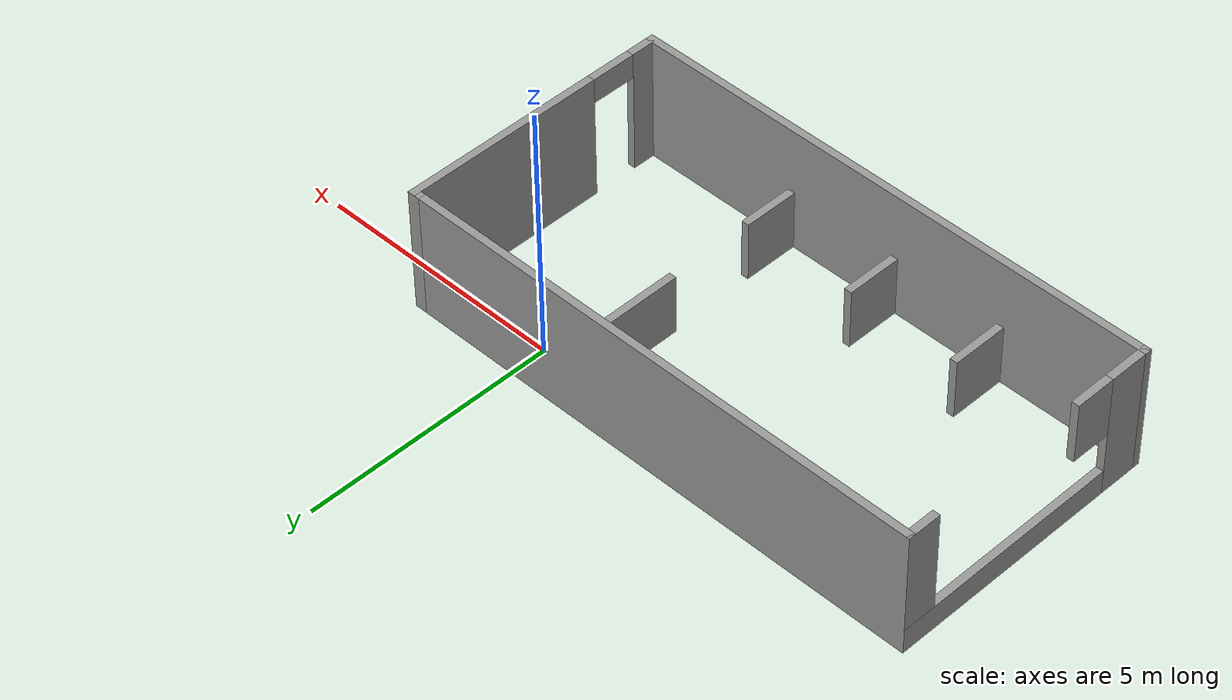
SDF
<?xml version='1.0'?>
<sdf version='1.6'>
  <model name='embd'>
    <pose frame=''>-3.11 -2.01767 0 0 -0 0</pose>
    <link name='Wall_0'>
      <collision name='Wall_0_Collision'>
        <geometry>
          <box>
            <size>10.75 0.15 2.5</size>
          </box>
        </geometry>
        <pose frame=''>0 0 1.25 0 -0 0</pose>
      </collision>
      <visual name='Wall_0_Visual'>
        <pose frame=''>0 0 1.25 0 -0 0</pose>
        <geometry>
          <box>
            <size>10.75 0.15 2.5</size>
          </box>
        </geometry>
        <material>
          <script>
            <uri>file://media/materials/scripts/gazebo.material</uri>
            <name>Gazebo/Grey</name>
          </script>
          <ambient>1 1 1 1</ambient>
        </material>
        <meta>
          <layer>0</layer>
        </meta>
      </visual>
      <pose frame=''>0 -2.67233 0 0 -0 3.14159</pose>
    </link>
    <link name='Wall_10'>
      <collision name='Wall_10_Collision'>
        <geometry>
          <box>
            <size>2.5 0.15 1.2</size>
          </box>
        </geometry>
        <pose frame=''>0 0 0.6 0 -0 0</pose>
      </collision>
      <visual name='Wall_10_Visual'>
        <pose frame=''>0 0 0.6 0 -0 0</pose>
        <geometry>
          <box>
            <size>2.5 0.15 1.2</size>
          </box>
        </geometry>
        <material>
          <script>
            <uri>file://media/materials/scripts/gazebo.material</uri>
            <name>Gazebo/Grey</name>
          </script>
          <ambient>1 1 1 1</ambient>
        </material>
        <meta>
          <layer>0</layer>
        </meta>
      </visual>
      <pose frame=''>1.97567 1.45267 0 0 0 -1.5708</pose>
    </link>
    <link name='Wall_12'>
      <collision name='Wall_12_Collision'>
        <geometry>
          <box>
            <size>1.25 0.15 1.2</size>
          </box>
        </geometry>
        <pose frame=''>0 0 0.6 0 -0 0</pose>
      </collision>
      <visual name='Wall_12_Visual'>
        <pose frame=''>0 0 0.6 0 -0 0</pose>
        <geometry>
          <box>
            <size>1.25 0.15 1.2</size>
          </box>
        </geometry>
        <material>
          <script>
            <uri>file://media/materials/scripts/gazebo.material</uri>
            <name>Gazebo/Grey</name>
          </script>
          <ambient>1 1 1 1</ambient>
        </material>
        <meta>
          <layer>0</layer>
        </meta>
      </visual>
      <pose frame=''>2.00567 -2.12767 0 0 -0 1.5708</pose>
    </link>
    <link name='Wall_14'>
      <collision name='Wall_14_Collision'>
        <geometry>
          <box>
            <size>1.25 0.15 1.2</size>
          </box>
        </geometry>
        <pose frame=''>0 0 0.6 0 -0 0</pose>
      </collision>
      <visual name='Wall_14_Visual'>
        <pose frame=''>0 0 0.6 0 -0 0</pose>
        <geometry>
          <box>
            <size>1.25 0.15 1.2</size>
          </box>
        </geometry>
        <material>
          <script>
            <uri>file://media/materials/scripts/gazebo.material</uri>
            <name>Gazebo/Grey</name>
          </script>
          <ambient>1 1 1 1</ambient>
        </material>
        <meta>
          <layer>0</layer>
        </meta>
      </visual>
      <pose frame=''>-0.279 -2.12333 0 0 0 -1.5708</pose>
    </link>
    <link name='Wall_16'>
      <collision name='Wall_16_Collision'>
        <geometry>
          <box>
            <size>1.25 0.15 1.2</size>
          </box>
        </geometry>
        <pose frame=''>0 0 0.6 0 -0 0</pose>
      </collision>
      <visual name='Wall_16_Visual'>
        <pose frame=''>0 0 0.6 0 -0 0</pose>
        <geometry>
          <box>
            <size>1.25 0.15 1.2</size>
          </box>
        </geometry>
        <material>
          <script>
            <uri>file://media/materials/scripts/gazebo.material</uri>
            <name>Gazebo/Grey</name>
          </script>
          <ambient>1 1 1 1</ambient>
        </material>
        <meta>
          <layer>0</layer>
        </meta>
      </visual>
      <pose frame=''>-2.548 -2.10833 0 0 0 -1.5708</pose>
    </link>
    <link name='Wall_2'>
      <pose frame=''>-5.3 0.002666 0 0 -0 1.5708</pose>
      <visual name='Wall_2_Visual_0'>
        <pose frame=''>-2.294 0 1.25 0 -0 0</pose>
        <geometry>
          <box>
            <size>0.911993 0.15 2.5</size>
          </box>
        </geometry>
        <material>
          <script>
            <uri>file://media/materials/scripts/gazebo.material</uri>
            <name>Gazebo/Grey</name>
          </script>
          <ambient>1 1 1 1</ambient>
        </material>
        <meta>
          <layer>0</layer>
        </meta>
      </visual>
      <collision name='Wall_2_Collision_0'>
        <geometry>
          <box>
            <size>0.911993 0.15 2.5</size>
          </box>
        </geometry>
        <pose frame=''>-2.294 0 1.25 0 -0 0</pose>
      </collision>
      <visual name='Wall_2_Visual_1'>
        <pose frame=''>0.455997 0 0.25 0 -0 0</pose>
        <geometry>
          <box>
            <size>4.58801 0.15 0.5</size>
          </box>
        </geometry>
        <material>
          <script>
            <uri>file://media/materials/scripts/gazebo.material</uri>
            <name>Gazebo/Grey</name>
          </script>
          <ambient>1 1 1 1</ambient>
        </material>
        <meta>
          <layer>0</layer>
        </meta>
      </visual>
      <collision name='Wall_2_Collision_1'>
        <geometry>
          <box>
            <size>4.58801 0.15 0.5</size>
          </box>
        </geometry>
        <pose frame=''>0.455997 0 0.25 0 -0 0</pose>
      </collision>
      <visual name='Wall_2_Visual_2'>
        <pose frame=''>2.41233 0 1.5 0 -0 0</pose>
        <geometry>
          <box>
            <size>0.67534 0.15 2</size>
          </box>
        </geometry>
        <material>
          <script>
            <uri>file://media/materials/scripts/gazebo.material</uri>
            <name>Gazebo/Grey</name>
          </script>
          <ambient>1 1 1 1</ambient>
        </material>
        <meta>
          <layer>0</layer>
        </meta>
      </visual>
      <collision name='Wall_2_Collision_2'>
        <geometry>
          <box>
            <size>0.67534 0.15 2</size>
          </box>
        </geometry>
        <pose frame=''>2.41233 0 1.5 0 -0 0</pose>
      </collision>
      <visual name='Wall_2_Visual_3'>
        <pose frame=''>-1.43934 0 1.9 0 -0 0</pose>
        <geometry>
          <box>
            <size>0.797333 0.15 1.2</size>
          </box>
        </geometry>
        <material>
          <script>
            <uri>file://media/materials/scripts/gazebo.material</uri>
            <name>Gazebo/Grey</name>
          </script>
          <ambient>1 1 1 1</ambient>
        </material>
        <meta>
          <layer>0</layer>
        </meta>
      </visual>
      <collision name='Wall_2_Collision_3'>
        <geometry>
          <box>
            <size>0.797333 0.15 1.2</size>
          </box>
        </geometry>
        <pose frame=''>-1.43934 0 1.9 0 -0 0</pose>
      </collision>
    </link>
    <link name='Wall_3'>
      <collision name='Wall_3_Collision'>
        <geometry>
          <box>
            <size>10.5 0.15 2.5</size>
          </box>
        </geometry>
        <pose frame=''>0 0 1.25 0 -0 0</pose>
      </collision>
      <visual name='Wall_3_Visual'>
        <pose frame=''>0 0 1.25 0 -0 0</pose>
        <geometry>
          <box>
            <size>10.5 0.15 2.5</size>
          </box>
        </geometry>
        <material>
          <script>
            <uri>file://media/materials/scripts/gazebo.material</uri>
            <name>Gazebo/Grey</name>
          </script>
          <ambient>1 1 1 1</ambient>
        </material>
        <meta>
          <layer>0</layer>
        </meta>
      </visual>
      <pose frame=''>-0.125 2.67767 0 0 -0 0</pose>
    </link>
    <link name='Wall_5'>
      <pose frame=''>5.3 0.002666 0 0 -0 1.5708</pose>
      <visual name='Wall_5_Visual_0'>
        <pose frame=''>-2.44934 0 1.25 0 -0 0</pose>
        <geometry>
          <box>
            <size>0.601327 0.15 2.5</size>
          </box>
        </geometry>
        <material>
          <script>
            <uri>file://media/materials/scripts/gazebo.material</uri>
            <name>Gazebo/Grey</name>
          </script>
          <ambient>1 1 1 1</ambient>
        </material>
        <meta>
          <layer>0</layer>
        </meta>
      </visual>
      <collision name='Wall_5_Collision_0'>
        <geometry>
          <box>
            <size>0.601327 0.15 2.5</size>
          </box>
        </geometry>
        <pose frame=''>-2.44934 0 1.25 0 -0 0</pose>
      </collision>
      <visual name='Wall_5_Visual_1'>
        <pose frame=''>0.750663 0 1.25 0 -0 0</pose>
        <geometry>
          <box>
            <size>3.99867 0.15 2.5</size>
          </box>
        </geometry>
        <material>
          <script>
            <uri>file://media/materials/scripts/gazebo.material</uri>
            <name>Gazebo/Grey</name>
          </script>
          <ambient>1 1 1 1</ambient>
        </material>
        <meta>
          <layer>0</layer>
        </meta>
      </visual>
      <collision name='Wall_5_Collision_1'>
        <geometry>
          <box>
            <size>3.99867 0.15 2.5</size>
          </box>
        </geometry>
        <pose frame=''>0.750663 0 1.25 0 -0 0</pose>
      </collision>
      <visual name='Wall_5_Visual_2'>
        <pose frame=''>-1.69867 0 2.25 0 -0 0</pose>
        <geometry>
          <box>
            <size>0.9 0.15 0.5</size>
          </box>
        </geometry>
        <material>
          <script>
            <uri>file://media/materials/scripts/gazebo.material</uri>
            <name>Gazebo/Grey</name>
          </script>
          <ambient>1 1 1 1</ambient>
        </material>
        <meta>
          <layer>0</layer>
        </meta>
      </visual>
      <collision name='Wall_5_Collision_2'>
        <geometry>
          <box>
            <size>0.9 0.15 0.5</size>
          </box>
        </geometry>
        <pose frame=''>-1.69867 0 2.25 0 -0 0</pose>
      </collision>
    </link>
    <link name='Wall_6'>
      <collision name='Wall_6_Collision'>
        <geometry>
          <box>
            <size>0.4 0.15 2.5</size>
          </box>
        </geometry>
        <pose frame=''>0 0 1.25 0 -0 0</pose>
      </collision>
      <visual name='Wall_6_Visual'>
        <pose frame=''>0 0 1.25 0 -0 0</pose>
        <geometry>
          <box>
            <size>0.4 0.15 2.5</size>
          </box>
        </geometry>
        <material>
          <script>
            <uri>file://media/materials/scripts/gazebo.material</uri>
            <name>Gazebo/Grey</name>
          </script>
          <ambient>1 1 1 1</ambient>
        </material>
        <meta>
          <layer>0</layer>
        </meta>
      </visual>
      <pose frame=''>5.175 2.67767 0 0 0 -3.14159</pose>
    </link>
    <static>1</static>
  </model>
</sdf>
